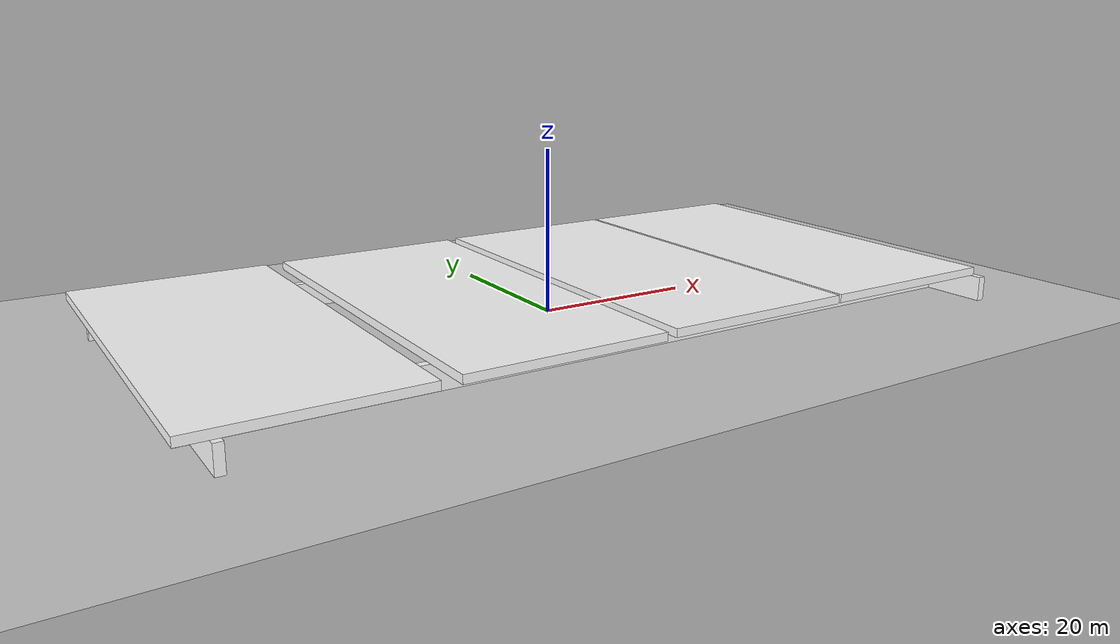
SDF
<sdf version="1.7">
 <world name="default">
  <light name="sun" type="directional">
   <pose>0 0 10 0 -0 0</pose>
   <diffuse>0.8 0.8 0.8 1</diffuse>
   <specular>0.2 0.2 0.2 1</specular>
   <attenuation>
    <range>1000</range>
    <constant>0.9</constant>
    <linear>0.01</linear>
    <quadratic>0.001</quadratic>
   </attenuation>
   <direction>-0.5 0.1 -0.9</direction>
   <spot><inner_angle>0</inner_angle><outer_angle>0</outer_angle><falloff>0</falloff></spot>
  </light>
  <model name="ground_plane">
   <static>1</static>
   <link name="link">
    <collision name="collision">
     <geometry><plane><normal>0 0 1</normal><size>100 100</size></plane></geometry>
     <surface><friction><ode><mu>100</mu><mu2>50</mu2></ode></friction></surface>
    </collision>
    <visual name="visual">
     <geometry><plane><normal>0 0 1</normal><size>100 100</size></plane></geometry>
     <material>
      <script><uri>file://media/materials/scripts/gazebo.material</uri><name>Gazebo/Grey</name></script>
     </material>
    </visual>
   </link>
  </model>
  <gravity>0 0 -9.8</gravity>
  <magnetic_field>6e-06 2.3e-05 -4.2e-05</magnetic_field>
  <atmosphere type="adiabatic"/>
  <physics type="ode">
   <max_step_size>0.001</max_step_size>
   <real_time_factor>1</real_time_factor>
   <real_time_update_rate>1000</real_time_update_rate>
  </physics>
  <scene><ambient>0.4 0.4 0.4 1</ambient><background>0.7 0.7 0.7 1</background><shadows>1</shadows></scene>
  <spherical_coordinates>
   <surface_model>EARTH_WGS84</surface_model>
   <latitude_deg>0</latitude_deg>
   <longitude_deg>0</longitude_deg>
   <elevation>0</elevation>
   <heading_deg>0</heading_deg>
  </spherical_coordinates>
  <model name="prova_reflects_2">
   <link name="link_2">
    <inertial>
     <mass>1</mass>
     <inertia>
      <ixx>0.166667</ixx>
      <ixy>0</ixy>
      <ixz>0</ixz>
      <iyy>0.166667</iyy>
      <iyz>0</iyz>
      <izz>0.166667</izz>
     </inertia>
    </inertial>
    <pose>-0.217385 17.4199 -1 0 -0 0</pose>
    <visual name="visual">
     <geometry><box><size>100 1 3</size></box></geometry>
     <material>
      <pbr>
       <metal>
        <albedo_map>materials/textures/concrete_wall_tunel_B_Diffuse.jpg</albedo_map>
        <normal_map>materials/textures/concrete_wall_tunel_B_Normal.jpg</normal_map>
        <metalness_map>materials/textures/concrete_wall_tunel_B_Specular.jpg</metalness_map>
        <roughness_map>materials/textures/concrete_wall_tunel_B_Glossiness.jpg</roughness_map>
       </metal>
      </pbr>
      <diffuse>1.0 1.0 1.0</diffuse>
      <specular>1.0 1.0 1.0</specular>
     </material>
    </visual>
    <collision name="collision">
     <laser_retro>1</laser_retro>
     <geometry><box><size>100 1 3</size></box></geometry>
     <surface>
      <friction>
       <ode><mu>1</mu><mu2>1</mu2><fdir1>0 0 0</fdir1><slip1>0</slip1><slip2>0</slip2></ode>
       <torsional>
        <coefficient>1</coefficient>
        <patch_radius>0</patch_radius>
        <surface_radius>0</surface_radius>
        <use_patch_radius>1</use_patch_radius>
        <ode><slip>0</slip></ode>
       </torsional>
      </friction>
      <bounce><restitution_coefficient>0</restitution_coefficient><threshold>1e+06</threshold></bounce>
      <contact>
       <collide_without_contact>0</collide_without_contact>
       <collide_without_contact_bitmask>1</collide_without_contact_bitmask>
       <collide_bitmask>1</collide_bitmask>
       <ode>
        <soft_cfm>0</soft_cfm>
        <soft_erp>0.2</soft_erp>
        <kp>1e+13</kp>
        <kd>1</kd>
        <max_vel>0.01</max_vel>
        <min_depth>0</min_depth>
       </ode>
       <bullet>
        <split_impulse>1</split_impulse>
        <split_impulse_penetration_threshold>-0.01</split_impulse_penetration_threshold>
        <soft_cfm>0</soft_cfm>
        <soft_erp>0.2</soft_erp>
        <kp>1e+13</kp>
        <kd>1</kd>
       </bullet>
      </contact>
     </surface>
    </collision>
   </link>
   <link name="link_2_clone">
    <inertial>
     <mass>1</mass>
     <inertia>
      <ixx>0.166667</ixx>
      <ixy>0</ixy>
      <ixz>0</ixz>
      <iyy>0.166667</iyy>
      <iyz>0</iyz>
      <izz>0.166667</izz>
     </inertia>
    </inertial>
    <pose>0.410875 -17.5734 -1 0 -0 0</pose>
    <visual name="visual">
     <geometry><box><size>100 1 3</size></box></geometry>
     <material>
      <pbr>
       <metal>
        <albedo_map>materials/textures/concrete_wall_tunel_B_Diffuse.jpg</albedo_map>
        <normal_map>materials/textures/concrete_wall_tunel_B_Normal.jpg</normal_map>
        <metalness_map>materials/textures/concrete_wall_tunel_B_Specular.jpg</metalness_map>
        <roughness_map>materials/textures/concrete_wall_tunel_B_Glossiness.jpg</roughness_map>
       </metal>
      </pbr>
      <diffuse>1.0 1.0 1.0</diffuse>
      <specular>1.0 1.0 1.0</specular>
     </material>
    </visual>
    <collision name="collision">
     <laser_retro>0.5</laser_retro>
     <geometry><box><size>100 1 3</size></box></geometry>
     <surface>
      <friction>
       <ode><mu>1</mu><mu2>1</mu2><fdir1>0 0 0</fdir1><slip1>0</slip1><slip2>0</slip2></ode>
       <torsional>
        <coefficient>1</coefficient>
        <patch_radius>0</patch_radius>
        <surface_radius>0</surface_radius>
        <use_patch_radius>1</use_patch_radius>
        <ode><slip>0</slip></ode>
       </torsional>
      </friction>
      <bounce><restitution_coefficient>0</restitution_coefficient><threshold>1e+06</threshold></bounce>
      <contact>
       <collide_without_contact>0</collide_without_contact>
       <collide_without_contact_bitmask>1</collide_without_contact_bitmask>
       <collide_bitmask>1</collide_bitmask>
       <ode>
        <soft_cfm>0</soft_cfm>
        <soft_erp>0.2</soft_erp>
        <kp>1e+13</kp>
        <kd>1</kd>
        <max_vel>0.01</max_vel>
        <min_depth>0</min_depth>
       </ode>
       <bullet>
        <split_impulse>1</split_impulse>
        <split_impulse_penetration_threshold>-0.01</split_impulse_penetration_threshold>
        <soft_cfm>0</soft_cfm>
        <soft_erp>0.2</soft_erp>
        <kp>1e+13</kp>
        <kd>1</kd>
       </bullet>
      </contact>
     </surface>
    </collision>
   </link>
   <link name="link_2_clone_0">
    <inertial>
     <mass>1</mass>
     <inertia>
      <ixx>0.166667</ixx>
      <ixy>0</ixy>
      <ixz>0</ixz>
      <iyy>0.166667</iyy>
      <iyz>0</iyz>
      <izz>0.166667</izz>
     </inertia>
    </inertial>
    <pose>49.1582 -0.600773 -1 0 -0 0</pose>
    <visual name="visual">
     <geometry><box><size>1 50 3</size></box></geometry>
     <material>
      <pbr>
       <metal>
        <albedo_map>materials/textures/concrete_wall_tunel_B_Diffuse.jpg</albedo_map>
        <normal_map>materials/textures/concrete_wall_tunel_B_Normal.jpg</normal_map>
        <metalness_map>materials/textures/concrete_wall_tunel_B_Specular.jpg</metalness_map>
        <roughness_map>materials/textures/concrete_wall_tunel_B_Glossiness.jpg</roughness_map>
       </metal>
      </pbr>
      <diffuse>1.0 1.0 1.0</diffuse>
      <specular>1.0 1.0 1.0</specular>
     </material>
    </visual>
    <collision name="collision">
     <geometry><box><size>1 50 3</size></box></geometry>
     <surface>
      <friction>
       <ode><mu>1</mu><mu2>1</mu2><fdir1>0 0 0</fdir1><slip1>0</slip1><slip2>0</slip2></ode>
       <torsional>
        <coefficient>1</coefficient>
        <patch_radius>0</patch_radius>
        <surface_radius>0</surface_radius>
        <use_patch_radius>1</use_patch_radius>
        <ode><slip>0</slip></ode>
       </torsional>
      </friction>
      <bounce><restitution_coefficient>0</restitution_coefficient><threshold>1e+06</threshold></bounce>
      <contact>
       <collide_without_contact>0</collide_without_contact>
       <collide_without_contact_bitmask>1</collide_without_contact_bitmask>
       <collide_bitmask>1</collide_bitmask>
       <ode>
        <soft_cfm>0</soft_cfm>
        <soft_erp>0.2</soft_erp>
        <kp>1e+13</kp>
        <kd>1</kd>
        <max_vel>0.01</max_vel>
        <min_depth>0</min_depth>
       </ode>
       <bullet>
        <split_impulse>1</split_impulse>
        <split_impulse_penetration_threshold>-0.01</split_impulse_penetration_threshold>
        <soft_cfm>0</soft_cfm>
        <soft_erp>0.2</soft_erp>
        <kp>1e+13</kp>
        <kd>1</kd>
       </bullet>
      </contact>
     </surface>
    </collision>
   </link>
   <link name="link_2_clone_0_clone">
    <inertial>
     <mass>1</mass>
     <inertia>
      <ixx>0.166667</ixx>
      <ixy>0</ixy>
      <ixz>0</ixz>
      <iyy>0.166667</iyy>
      <iyz>0</iyz>
      <izz>0.166667</izz>
     </inertia>
    </inertial>
    <pose>-47.5634 -0.828256 -1 0 -0 0</pose>
    <visual name="visual">
     <geometry><box><size>1 50 3</size></box></geometry>
     <material>
      <diffuse>1.0 1.0 1.0</diffuse>
      <specular>1.0 1.0 1.0</specular>
      <pbr>
       <metal>
        <albedo_map>materials/textures/concrete_wall_tunel_B_Diffuse.jpg</albedo_map>
        <normal_map>materials/textures/concrete_wall_tunel_B_Normal.jpg</normal_map>
        <metalness_map>materials/textures/concrete_wall_tunel_B_Specular.jpg</metalness_map>
        <roughness_map>materials/textures/concrete_wall_tunel_B_Glossiness.jpg</roughness_map>
       </metal>
      </pbr>
     </material>
    </visual>
    <collision name="collision">
     <geometry><box><size>1 50 3</size></box></geometry>
     <surface>
      <friction>
       <ode><mu>1</mu><mu2>1</mu2><fdir1>0 0 0</fdir1><slip1>0</slip1><slip2>0</slip2></ode>
       <torsional>
        <coefficient>1</coefficient>
        <patch_radius>0</patch_radius>
        <surface_radius>0</surface_radius>
        <use_patch_radius>1</use_patch_radius>
        <ode><slip>0</slip></ode>
       </torsional>
      </friction>
      <bounce><restitution_coefficient>0</restitution_coefficient><threshold>1e+06</threshold></bounce>
      <contact>
       <collide_without_contact>0</collide_without_contact>
       <collide_without_contact_bitmask>1</collide_without_contact_bitmask>
       <collide_bitmask>1</collide_bitmask>
       <ode>
        <soft_cfm>0</soft_cfm>
        <soft_erp>0.2</soft_erp>
        <kp>1e+13</kp>
        <kd>1</kd>
        <max_vel>0.01</max_vel>
        <min_depth>0</min_depth>
       </ode>
       <bullet>
        <split_impulse>1</split_impulse>
        <split_impulse_penetration_threshold>-0.01</split_impulse_penetration_threshold>
        <soft_cfm>0</soft_cfm>
        <soft_erp>0.2</soft_erp>
        <kp>1e+13</kp>
        <kd>1</kd>
       </bullet>
      </contact>
     </surface>
    </collision>
   </link>
   <link name="link_5">
    <inertial>
     <mass>1</mass>
     <inertia>
      <ixx>0.166667</ixx>
      <ixy>0</ixy>
      <ixz>0</ixz>
      <iyy>0.166667</iyy>
      <iyz>0</iyz>
      <izz>0.166667</izz>
     </inertia>
    </inertial>
    <pose>37.2105 0.768872 1 0 -0 0</pose>
    <visual name="visual">
     <geometry><box><size>24 50 1</size></box></geometry>
     <material>
      <diffuse>1.0 1.0 1.0</diffuse>
      <specular>1.0 1.0 1.0</specular>
      <pbr>
       <metal>
        <albedo_map>materials/textures/Netceiling_Base Color.jpg</albedo_map>
        <normal_map>materials/textures/Netceiling_Normal.jpg</normal_map>
       </metal>
      </pbr>
     </material>
    </visual>
    <collision name="collision">
     <laser_retro>0.5</laser_retro>
     <geometry><box><size>24 50 1</size></box></geometry>
     <surface>
      <friction>
       <ode><mu>1</mu><mu2>1</mu2><fdir1>0 0 0</fdir1><slip1>0</slip1><slip2>0</slip2></ode>
       <torsional>
        <coefficient>1</coefficient>
        <patch_radius>0</patch_radius>
        <surface_radius>0</surface_radius>
        <use_patch_radius>1</use_patch_radius>
        <ode><slip>0</slip></ode>
       </torsional>
      </friction>
      <bounce><restitution_coefficient>0</restitution_coefficient><threshold>1e+06</threshold></bounce>
      <contact>
       <collide_without_contact>0</collide_without_contact>
       <collide_without_contact_bitmask>1</collide_without_contact_bitmask>
       <collide_bitmask>1</collide_bitmask>
       <ode>
        <soft_cfm>0</soft_cfm>
        <soft_erp>0.2</soft_erp>
        <kp>1e+13</kp>
        <kd>1</kd>
        <max_vel>0.01</max_vel>
        <min_depth>0</min_depth>
       </ode>
       <bullet>
        <split_impulse>1</split_impulse>
        <split_impulse_penetration_threshold>-0.01</split_impulse_penetration_threshold>
        <soft_cfm>0</soft_cfm>
        <soft_erp>0.2</soft_erp>
        <kp>1e+13</kp>
        <kd>1</kd>
       </bullet>
      </contact>
     </surface>
    </collision>
   </link>
   <link name="link_5_clone">
    <inertial>
     <mass>1</mass>
     <inertia>
      <ixx>0.166667</ixx>
      <ixy>0</ixy>
      <ixz>0</ixz>
      <iyy>0.166667</iyy>
      <iyz>0</iyz>
      <izz>0.166667</izz>
     </inertia>
    </inertial>
    <pose>12.7853 0.660022 1 0 -0 0</pose>
    <visual name="visual">
     <geometry><box><size>24 50 1</size></box></geometry>
     <material>
      <diffuse>1.0 1.0 1.0</diffuse>
      <specular>1.0 1.0 1.0</specular>
      <pbr>
       <metal>
        <albedo_map>materials/textures/Netceiling_Base Color.jpg</albedo_map>
        <normal_map>materials/textures/Netceiling_Normal.jpg</normal_map>
       </metal>
      </pbr>
     </material>
    </visual>
    <collision name="collision">
     <geometry><box><size>24 50 1</size></box></geometry>
     <surface>
      <friction>
       <ode><mu>1</mu><mu2>1</mu2><fdir1>0 0 0</fdir1><slip1>0</slip1><slip2>0</slip2></ode>
       <torsional>
        <coefficient>1</coefficient>
        <patch_radius>0</patch_radius>
        <surface_radius>0</surface_radius>
        <use_patch_radius>1</use_patch_radius>
        <ode><slip>0</slip></ode>
       </torsional>
      </friction>
      <bounce><restitution_coefficient>0</restitution_coefficient><threshold>1e+06</threshold></bounce>
      <contact>
       <collide_without_contact>0</collide_without_contact>
       <collide_without_contact_bitmask>1</collide_without_contact_bitmask>
       <collide_bitmask>1</collide_bitmask>
       <ode>
        <soft_cfm>0</soft_cfm>
        <soft_erp>0.2</soft_erp>
        <kp>1e+13</kp>
        <kd>1</kd>
        <max_vel>0.01</max_vel>
        <min_depth>0</min_depth>
       </ode>
       <bullet>
        <split_impulse>1</split_impulse>
        <split_impulse_penetration_threshold>-0.01</split_impulse_penetration_threshold>
        <soft_cfm>0</soft_cfm>
        <soft_erp>0.2</soft_erp>
        <kp>1e+13</kp>
        <kd>1</kd>
       </bullet>
      </contact>
     </surface>
    </collision>
   </link>
   <link name="link_5_clone_clone">
    <inertial>
     <mass>1</mass>
     <inertia>
      <ixx>0.166667</ixx>
      <ixy>0</ixy>
      <ixz>0</ixz>
      <iyy>0.166667</iyy>
      <iyz>0</iyz>
      <izz>0.166667</izz>
     </inertia>
    </inertial>
    <pose>-12.712 0.242482 1 0 -0 0</pose>
    <visual name="visual">
     <geometry><box><size>24 50 1</size></box></geometry>
     <material>
      <diffuse>1.0 1.0 1.0</diffuse>
      <specular>1.0 1.0 1.0</specular>
      <pbr>
       <metal>
        <albedo_map>materials/textures/Netceiling_Base Color.jpg</albedo_map>
        <normal_map>materials/textures/Netceiling_Normal.jpg</normal_map>
       </metal>
      </pbr>
     </material>
    </visual>
    <collision name="collision">
     <geometry><box><size>24 50 1</size></box></geometry>
     <surface>
      <friction>
       <ode><mu>1</mu><mu2>1</mu2><fdir1>0 0 0</fdir1><slip1>0</slip1><slip2>0</slip2></ode>
       <torsional>
        <coefficient>1</coefficient>
        <patch_radius>0</patch_radius>
        <surface_radius>0</surface_radius>
        <use_patch_radius>1</use_patch_radius>
        <ode><slip>0</slip></ode>
       </torsional>
      </friction>
      <bounce><restitution_coefficient>0</restitution_coefficient><threshold>1e+06</threshold></bounce>
      <contact>
       <collide_without_contact>0</collide_without_contact>
       <collide_without_contact_bitmask>1</collide_without_contact_bitmask>
       <collide_bitmask>1</collide_bitmask>
       <ode>
        <soft_cfm>0</soft_cfm>
        <soft_erp>0.2</soft_erp>
        <kp>1e+13</kp>
        <kd>1</kd>
        <max_vel>0.01</max_vel>
        <min_depth>0</min_depth>
       </ode>
       <bullet>
        <split_impulse>1</split_impulse>
        <split_impulse_penetration_threshold>-0.01</split_impulse_penetration_threshold>
        <soft_cfm>0</soft_cfm>
        <soft_erp>0.2</soft_erp>
        <kp>1e+13</kp>
        <kd>1</kd>
       </bullet>
      </contact>
     </surface>
    </collision>
   </link>
   <link name="link_5_clone_clone_clone">
    <inertial>
     <mass>1</mass>
     <inertia>
      <ixx>0.166667</ixx>
      <ixy>0</ixy>
      <ixz>0</ixz>
      <iyy>0.166667</iyy>
      <iyz>0</iyz>
      <izz>0.166667</izz>
     </inertia>
    </inertial>
    <pose>-39.0721 -0.088851 1 0 -0 0</pose>
    <visual name="visual">
     <geometry><box><size>24 50 1</size></box></geometry>
     <material>
      <diffuse>1.0 1.0 1.0</diffuse>
      <specular>1.0 1.0 1.0</specular>
      <pbr>
       <metal>
        <albedo_map>materials/textures/Netceiling_Base Color.jpg</albedo_map>
        <normal_map>materials/textures/Netceiling_Normal.jpg</normal_map>
       </metal>
      </pbr>
     </material>
    </visual>
    <collision name="collision">
     <laser_retro>1</laser_retro>
     <geometry><box><size>24 50 1</size></box></geometry>
     <surface>
      <friction>
       <ode><mu>1</mu><mu2>1</mu2><fdir1>0 0 0</fdir1><slip1>0</slip1><slip2>0</slip2></ode>
       <torsional>
        <coefficient>1</coefficient>
        <patch_radius>0</patch_radius>
        <surface_radius>0</surface_radius>
        <use_patch_radius>1</use_patch_radius>
        <ode><slip>0</slip></ode>
       </torsional>
      </friction>
      <bounce><restitution_coefficient>0</restitution_coefficient><threshold>1e+06</threshold></bounce>
      <contact>
       <collide_without_contact>0</collide_without_contact>
       <collide_without_contact_bitmask>1</collide_without_contact_bitmask>
       <collide_bitmask>1</collide_bitmask>
       <ode>
        <soft_cfm>0</soft_cfm>
        <soft_erp>0.2</soft_erp>
        <kp>1e+13</kp>
        <kd>1</kd>
        <max_vel>0.01</max_vel>
        <min_depth>0</min_depth>
       </ode>
       <bullet>
        <split_impulse>1</split_impulse>
        <split_impulse_penetration_threshold>-0.01</split_impulse_penetration_threshold>
        <soft_cfm>0</soft_cfm>
        <soft_erp>0.2</soft_erp>
        <kp>1e+13</kp>
        <kd>1</kd>
       </bullet>
      </contact>
     </surface>
    </collision>
   </link>
   <static>1</static>
   <pose>0.180898 0.492598 2.5 0 -0 0</pose>
  </model>
 </world>
</sdf>
